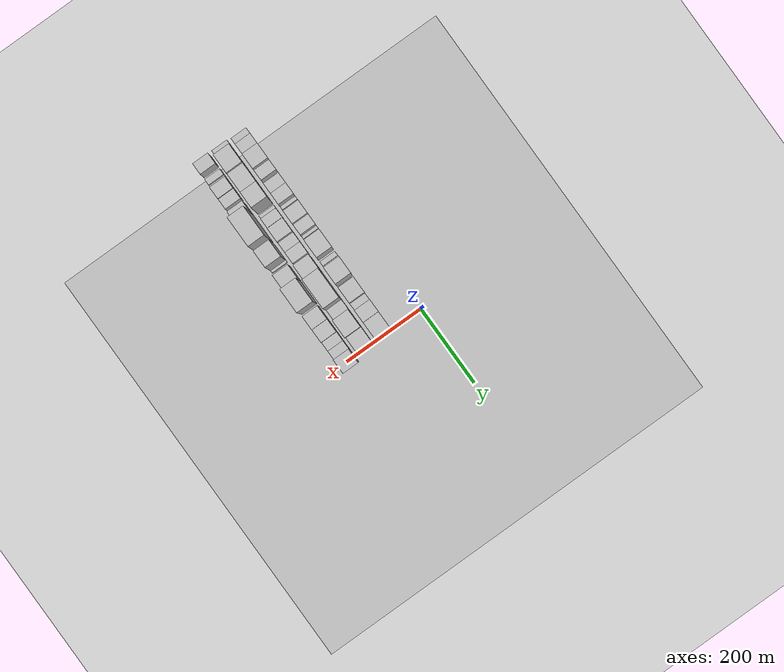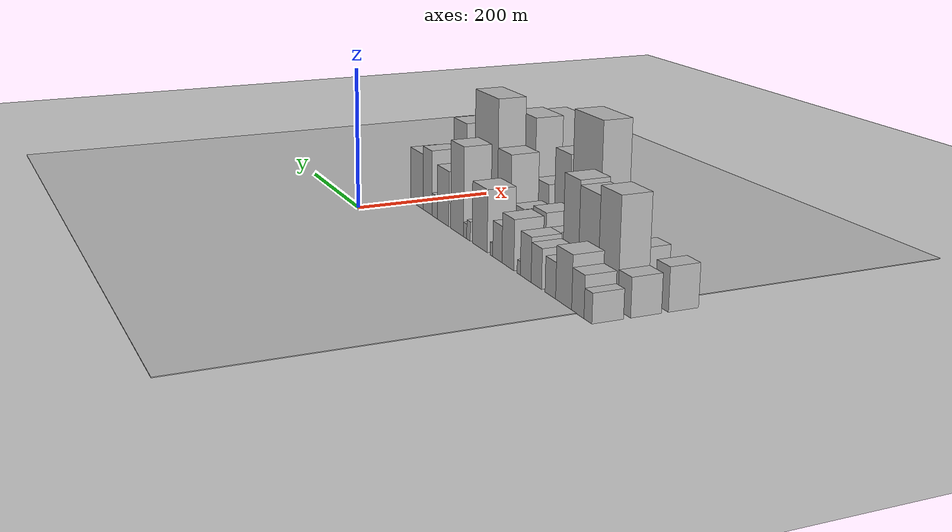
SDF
<sdf version="1.6">
 <world name="default">
  <include><name>ground_plane_1</name><uri>model://HANNAS_ground_plane</uri></include>
  <include>
   <name>ground_plane_2</name>
   <uri>model://HANNAS_ground_plane</uri>
   <pose>100 0 0  0 0 0</pose>
  </include>
  <model name="building_1">
   <static>1</static>
   <pose>100.0000 -526.9370 0 0.000000 0.000000 0.000000</pose>
   <link name="link">
    <pose>0 0 18.00 0 0 0</pose>
    <collision name="collision"><geometry><box><size>40.0000 18.1259 36.0000</size></box></geometry></collision>
    <visual name="visual">
     <cast_shadows>0</cast_shadows>
     <geometry><box><size>40.0000 18.1259 36.0000</size></box></geometry>
     <material>
      <script>
       <uri>model://HANNAS_wall/materials/scripts</uri>
       <uri>model://HANNAS_wall/materials/textures</uri>
       <name>vrc/HANNAS_wall</name>
      </script>
     </material>
    </visual>
   </link>
  </model>
  <model name="building_2">
   <static>1</static>
   <pose>100.0000 -503.3876 0 0.000000 0.000000 0.000000</pose>
   <link name="link">
    <pose>0 0 25.50 0 0 0</pose>
    <collision name="collision"><geometry><box><size>40.0000 28.9729 51.0000</size></box></geometry></collision>
    <visual name="visual">
     <cast_shadows>0</cast_shadows>
     <geometry><box><size>40.0000 28.9729 51.0000</size></box></geometry>
     <material>
      <script>
       <uri>model://HANNAS_wall/materials/scripts</uri>
       <uri>model://HANNAS_wall/materials/textures</uri>
       <name>vrc/HANNAS_wall</name>
      </script>
     </material>
    </visual>
   </link>
  </model>
  <model name="building_3">
   <static>1</static>
   <pose>100.0000 -469.4023 0 0.000000 0.000000 0.000000</pose>
   <link name="link">
    <pose>0 0 33.00 0 0 0</pose>
    <collision name="collision"><geometry><box><size>40.0000 38.9977 66.0000</size></box></geometry></collision>
    <visual name="visual">
     <cast_shadows>0</cast_shadows>
     <geometry><box><size>40.0000 38.9977 66.0000</size></box></geometry>
     <material>
      <script>
       <uri>model://HANNAS_wall/materials/scripts</uri>
       <uri>model://HANNAS_wall/materials/textures</uri>
       <name>vrc/HANNAS_wall</name>
      </script>
     </material>
    </visual>
   </link>
  </model>
  <model name="building_4">
   <static>1</static>
   <pose>100.0000 -436.5735 0 0.000000 0.000000 0.000000</pose>
   <link name="link">
    <pose>0 0 22.50 0 0 0</pose>
    <collision name="collision"><geometry><box><size>40.0000 26.6598 45.0000</size></box></geometry></collision>
    <visual name="visual">
     <cast_shadows>0</cast_shadows>
     <geometry><box><size>40.0000 26.6598 45.0000</size></box></geometry>
     <material>
      <script>
       <uri>model://HANNAS_wall/materials/scripts</uri>
       <uri>model://HANNAS_wall/materials/textures</uri>
       <name>vrc/HANNAS_wall</name>
      </script>
     </material>
    </visual>
   </link>
  </model>
  <model name="building_5">
   <static>1</static>
   <pose>100.0000 -400.4668 0 0.000000 0.000000 0.000000</pose>
   <link name="link">
    <pose>0 0 25.50 0 0 0</pose>
    <collision name="collision"><geometry><box><size>40.0000 27.5535 51.0000</size></box></geometry></collision>
    <visual name="visual">
     <cast_shadows>0</cast_shadows>
     <geometry><box><size>40.0000 27.5535 51.0000</size></box></geometry>
     <material>
      <script>
       <uri>model://HANNAS_wall/materials/scripts</uri>
       <uri>model://HANNAS_wall/materials/textures</uri>
       <name>vrc/HANNAS_wall</name>
      </script>
     </material>
    </visual>
   </link>
  </model>
  <model name="building_6">
   <static>1</static>
   <pose>100.0000 -372.0732 0 0.000000 0.000000 0.000000</pose>
   <link name="link">
    <pose>0 0 28.50 0 0 0</pose>
    <collision name="collision"><geometry><box><size>40.0000 29.2336 57.0000</size></box></geometry></collision>
    <visual name="visual">
     <cast_shadows>0</cast_shadows>
     <geometry><box><size>40.0000 29.2336 57.0000</size></box></geometry>
     <material>
      <script>
       <uri>model://HANNAS_wall/materials/scripts</uri>
       <uri>model://HANNAS_wall/materials/textures</uri>
       <name>vrc/HANNAS_wall</name>
      </script>
     </material>
    </visual>
   </link>
  </model>
  <model name="building_7">
   <static>1</static>
   <pose>100.0000 -353.0779 0 0.000000 0.000000 0.000000</pose>
   <link name="link">
    <pose>0 0 9.00 0 0 0</pose>
    <collision name="collision"><geometry><box><size>40.0000 8.7571 18.0000</size></box></geometry></collision>
    <visual name="visual">
     <cast_shadows>0</cast_shadows>
     <geometry><box><size>40.0000 8.7571 18.0000</size></box></geometry>
     <material>
      <script>
       <uri>model://HANNAS_wall/materials/scripts</uri>
       <uri>model://HANNAS_wall/materials/textures</uri>
       <name>vrc/HANNAS_wall</name>
      </script>
     </material>
    </visual>
   </link>
  </model>
  <model name="building_8">
   <static>1</static>
   <pose>100.0000 -322.6337 0 0.000000 0.000000 0.000000</pose>
   <link name="link">
    <pose>0 0 33.00 0 0 0</pose>
    <collision name="collision"><geometry><box><size>40.0000 34.1313 66.0000</size></box></geometry></collision>
    <visual name="visual">
     <cast_shadows>0</cast_shadows>
     <geometry><box><size>40.0000 34.1313 66.0000</size></box></geometry>
     <material>
      <script>
       <uri>model://HANNAS_wall/materials/scripts</uri>
       <uri>model://HANNAS_wall/materials/textures</uri>
       <name>vrc/HANNAS_wall</name>
      </script>
     </material>
    </visual>
   </link>
  </model>
  <model name="building_9">
   <static>1</static>
   <pose>100.0000 -292.0174 0 0.000000 0.000000 0.000000</pose>
   <link name="link">
    <pose>0 0 24.00 0 0 0</pose>
    <collision name="collision"><geometry><box><size>40.0000 27.1014 48.0000</size></box></geometry></collision>
    <visual name="visual">
     <cast_shadows>0</cast_shadows>
     <geometry><box><size>40.0000 27.1014 48.0000</size></box></geometry>
     <material>
      <script>
       <uri>model://HANNAS_wall/materials/scripts</uri>
       <uri>model://HANNAS_wall/materials/textures</uri>
       <name>vrc/HANNAS_wall</name>
      </script>
     </material>
    </visual>
   </link>
  </model>
  <model name="building_10">
   <static>1</static>
   <pose>100.0000 -274.6580 0 0.000000 0.000000 0.000000</pose>
   <link name="link">
    <pose>0 0 9.00 0 0 0</pose>
    <collision name="collision"><geometry><box><size>40.0000 7.6173 18.0000</size></box></geometry></collision>
    <visual name="visual">
     <cast_shadows>0</cast_shadows>
     <geometry><box><size>40.0000 7.6173 18.0000</size></box></geometry>
     <material>
      <script>
       <uri>model://HANNAS_wall/materials/scripts</uri>
       <uri>model://HANNAS_wall/materials/textures</uri>
       <name>vrc/HANNAS_wall</name>
      </script>
     </material>
    </visual>
   </link>
  </model>
  <model name="building_11">
   <static>1</static>
   <pose>100.0000 -238.5175 0 0.000000 0.000000 0.000000</pose>
   <link name="link">
    <pose>0 0 42.00 0 0 0</pose>
    <collision name="collision"><geometry><box><size>40.0000 46.6637 84.0000</size></box></geometry></collision>
    <visual name="visual">
     <cast_shadows>0</cast_shadows>
     <geometry><box><size>40.0000 46.6637 84.0000</size></box></geometry>
     <material>
      <script>
       <uri>model://HANNAS_wall/materials/scripts</uri>
       <uri>model://HANNAS_wall/materials/textures</uri>
       <name>vrc/HANNAS_wall</name>
      </script>
     </material>
    </visual>
   </link>
  </model>
  <model name="building_12">
   <static>1</static>
   <pose>100.0000 -203.4173 0 0.000000 0.000000 0.000000</pose>
   <link name="link">
    <pose>0 0 13.50 0 0 0</pose>
    <collision name="collision"><geometry><box><size>40.0000 11.5369 27.0000</size></box></geometry></collision>
    <visual name="visual">
     <cast_shadows>0</cast_shadows>
     <geometry><box><size>40.0000 11.5369 27.0000</size></box></geometry>
     <material>
      <script>
       <uri>model://HANNAS_wall/materials/scripts</uri>
       <uri>model://HANNAS_wall/materials/textures</uri>
       <name>vrc/HANNAS_wall</name>
      </script>
     </material>
    </visual>
   </link>
  </model>
  <model name="building_13">
   <static>1</static>
   <pose>100.0000 -192.4836 0 0.000000 0.000000 0.000000</pose>
   <link name="link">
    <pose>0 0 10.50 0 0 0</pose>
    <collision name="collision"><geometry><box><size>40.0000 10.3304 21.0000</size></box></geometry></collision>
    <visual name="visual">
     <cast_shadows>0</cast_shadows>
     <geometry><box><size>40.0000 10.3304 21.0000</size></box></geometry>
     <material>
      <script>
       <uri>model://HANNAS_wall/materials/scripts</uri>
       <uri>model://HANNAS_wall/materials/textures</uri>
       <name>vrc/HANNAS_wall</name>
      </script>
     </material>
    </visual>
   </link>
  </model>
  <model name="building_14">
   <static>1</static>
   <pose>100.0000 -165.8141 0 0.000000 0.000000 0.000000</pose>
   <link name="link">
    <pose>0 0 61.50 0 0 0</pose>
    <collision name="collision"><geometry><box><size>40.0000 43.0087 123.0000</size></box></geometry></collision>
    <visual name="visual">
     <cast_shadows>0</cast_shadows>
     <geometry><box><size>40.0000 43.0087 123.0000</size></box></geometry>
     <material>
      <script>
       <uri>model://HANNAS_wall/materials/scripts</uri>
       <uri>model://HANNAS_wall/materials/textures</uri>
       <name>vrc/HANNAS_wall</name>
      </script>
     </material>
    </visual>
   </link>
  </model>
  <model name="building_15">
   <static>1</static>
   <pose>100.0000 -117.7832 0 0.000000 0.000000 0.000000</pose>
   <link name="link">
    <pose>0 0 39.00 0 0 0</pose>
    <collision name="collision"><geometry><box><size>40.0000 41.0529 78.0000</size></box></geometry></collision>
    <visual name="visual">
     <cast_shadows>0</cast_shadows>
     <geometry><box><size>40.0000 41.0529 78.0000</size></box></geometry>
     <material>
      <script>
       <uri>model://HANNAS_wall/materials/scripts</uri>
       <uri>model://HANNAS_wall/materials/textures</uri>
       <name>vrc/HANNAS_wall</name>
      </script>
     </material>
    </visual>
   </link>
  </model>
  <model name="building_16">
   <static>1</static>
   <pose>100.0000 -87.7702 0 0.000000 0.000000 0.000000</pose>
   <link name="link">
    <pose>0 0 16.50 0 0 0</pose>
    <collision name="collision"><geometry><box><size>40.0000 18.9730 33.0000</size></box></geometry></collision>
    <visual name="visual">
     <cast_shadows>0</cast_shadows>
     <geometry><box><size>40.0000 18.9730 33.0000</size></box></geometry>
     <material>
      <script>
       <uri>model://HANNAS_wall/materials/scripts</uri>
       <uri>model://HANNAS_wall/materials/textures</uri>
       <name>vrc/HANNAS_wall</name>
      </script>
     </material>
    </visual>
   </link>
  </model>
  <model name="building_17">
   <static>1</static>
   <pose>100.0000 -62.4303 0 0.000000 0.000000 0.000000</pose>
   <link name="link">
    <pose>0 0 46.50 0 0 0</pose>
    <collision name="collision"><geometry><box><size>40.0000 31.7069 93.0000</size></box></geometry></collision>
    <visual name="visual">
     <cast_shadows>0</cast_shadows>
     <geometry><box><size>40.0000 31.7069 93.0000</size></box></geometry>
     <material>
      <script>
       <uri>model://HANNAS_wall/materials/scripts</uri>
       <uri>model://HANNAS_wall/materials/textures</uri>
       <name>vrc/HANNAS_wall</name>
      </script>
     </material>
    </visual>
   </link>
  </model>
  <model name="building_18">
   <static>1</static>
   <pose>100.0000 -22.6745 0 0.000000 0.000000 0.000000</pose>
   <link name="link">
    <pose>0 0 40.50 0 0 0</pose>
    <collision name="collision"><geometry><box><size>40.0000 47.8046 81.0000</size></box></geometry></collision>
    <visual name="visual">
     <cast_shadows>0</cast_shadows>
     <geometry><box><size>40.0000 47.8046 81.0000</size></box></geometry>
     <material>
      <script>
       <uri>model://HANNAS_wall/materials/scripts</uri>
       <uri>model://HANNAS_wall/materials/textures</uri>
       <name>vrc/HANNAS_wall</name>
      </script>
     </material>
    </visual>
   </link>
  </model>
  <model name="building_39">
   <static>1</static>
   <pose>149.0000 -521.7345 0 0.000000 0.000000 0.000000</pose>
   <link name="link">
    <pose>0 0 24.00 0 0 0</pose>
    <collision name="collision"><geometry><box><size>40.0000 28.5310 48.0000</size></box></geometry></collision>
    <visual name="visual">
     <cast_shadows>0</cast_shadows>
     <geometry><box><size>40.0000 28.5310 48.0000</size></box></geometry>
     <material>
      <script>
       <uri>model://HANNAS_wall/materials/scripts</uri>
       <uri>model://HANNAS_wall/materials/textures</uri>
       <name>vrc/HANNAS_wall</name>
      </script>
     </material>
    </visual>
   </link>
  </model>
  <model name="building_40">
   <static>1</static>
   <pose>149.0000 -484.3753 0 0.000000 0.000000 0.000000</pose>
   <link name="link">
    <pose>0 0 67.50 0 0 0</pose>
    <collision name="collision"><geometry><box><size>40.0000 46.1875 135.0000</size></box></geometry></collision>
    <visual name="visual">
     <cast_shadows>0</cast_shadows>
     <geometry><box><size>40.0000 46.1875 135.0000</size></box></geometry>
     <material>
      <script>
       <uri>model://HANNAS_wall/materials/scripts</uri>
       <uri>model://HANNAS_wall/materials/textures</uri>
       <name>vrc/HANNAS_wall</name>
      </script>
     </material>
    </visual>
   </link>
  </model>
  <model name="building_41">
   <static>1</static>
   <pose>149.0000 -437.2656 0 0.000000 0.000000 0.000000</pose>
   <link name="link">
    <pose>0 0 61.50 0 0 0</pose>
    <collision name="collision"><geometry><box><size>40.0000 48.0318 123.0000</size></box></geometry></collision>
    <visual name="visual">
     <cast_shadows>0</cast_shadows>
     <geometry><box><size>40.0000 48.0318 123.0000</size></box></geometry>
     <material>
      <script>
       <uri>model://HANNAS_wall/materials/scripts</uri>
       <uri>model://HANNAS_wall/materials/textures</uri>
       <name>vrc/HANNAS_wall</name>
      </script>
     </material>
    </visual>
   </link>
  </model>
  <model name="building_42">
   <static>1</static>
   <pose>149.0000 -393.5932 0 0.000000 0.000000 0.000000</pose>
   <link name="link">
    <pose>0 0 64.50 0 0 0</pose>
    <collision name="collision"><geometry><box><size>40.0000 39.3130 129.0000</size></box></geometry></collision>
    <visual name="visual">
     <cast_shadows>0</cast_shadows>
     <geometry><box><size>40.0000 39.3130 129.0000</size></box></geometry>
     <material>
      <script>
       <uri>model://HANNAS_wall/materials/scripts</uri>
       <uri>model://HANNAS_wall/materials/textures</uri>
       <name>vrc/HANNAS_wall</name>
      </script>
     </material>
    </visual>
   </link>
  </model>
  <model name="building_43">
   <static>1</static>
   <pose>149.0000 -362.1825 0 0.000000 0.000000 0.000000</pose>
   <link name="link">
    <pose>0 0 12.00 0 0 0</pose>
    <collision name="collision"><geometry><box><size>40.0000 11.5084 24.0000</size></box></geometry></collision>
    <visual name="visual">
     <cast_shadows>0</cast_shadows>
     <geometry><box><size>40.0000 11.5084 24.0000</size></box></geometry>
     <material>
      <script>
       <uri>model://HANNAS_wall/materials/scripts</uri>
       <uri>model://HANNAS_wall/materials/textures</uri>
       <name>vrc/HANNAS_wall</name>
      </script>
     </material>
    </visual>
   </link>
  </model>
  <model name="building_44">
   <static>1</static>
   <pose>149.0000 -344.1168 0 0.000000 0.000000 0.000000</pose>
   <link name="link">
    <pose>0 0 24.00 0 0 0</pose>
    <collision name="collision"><geometry><box><size>40.0000 24.6230 48.0000</size></box></geometry></collision>
    <visual name="visual">
     <cast_shadows>0</cast_shadows>
     <geometry><box><size>40.0000 24.6230 48.0000</size></box></geometry>
     <material>
      <script>
       <uri>model://HANNAS_wall/materials/scripts</uri>
       <uri>model://HANNAS_wall/materials/textures</uri>
       <name>vrc/HANNAS_wall</name>
      </script>
     </material>
    </visual>
   </link>
  </model>
  <model name="building_45">
   <static>1</static>
   <pose>149.0000 -310.9780 0 0.000000 0.000000 0.000000</pose>
   <link name="link">
    <pose>0 0 33.00 0 0 0</pose>
    <collision name="collision"><geometry><box><size>40.0000 35.6545 66.0000</size></box></geometry></collision>
    <visual name="visual">
     <cast_shadows>0</cast_shadows>
     <geometry><box><size>40.0000 35.6545 66.0000</size></box></geometry>
     <material>
      <script>
       <uri>model://HANNAS_wall/materials/scripts</uri>
       <uri>model://HANNAS_wall/materials/textures</uri>
       <name>vrc/HANNAS_wall</name>
      </script>
     </material>
    </visual>
   </link>
  </model>
  <model name="building_46">
   <static>1</static>
   <pose>149.0000 -280.0862 0 0.000000 0.000000 0.000000</pose>
   <link name="link">
    <pose>0 0 22.50 0 0 0</pose>
    <collision name="collision"><geometry><box><size>40.0000 26.1290 45.0000</size></box></geometry></collision>
    <visual name="visual">
     <cast_shadows>0</cast_shadows>
     <geometry><box><size>40.0000 26.1290 45.0000</size></box></geometry>
     <material>
      <script>
       <uri>model://HANNAS_wall/materials/scripts</uri>
       <uri>model://HANNAS_wall/materials/textures</uri>
       <name>vrc/HANNAS_wall</name>
      </script>
     </material>
    </visual>
   </link>
  </model>
  <model name="building_47">
   <static>1</static>
   <pose>149.0000 -252.2133 0 0.000000 0.000000 0.000000</pose>
   <link name="link">
    <pose>0 0 27.00 0 0 0</pose>
    <collision name="collision"><geometry><box><size>40.0000 29.6169 54.0000</size></box></geometry></collision>
    <visual name="visual">
     <cast_shadows>0</cast_shadows>
     <geometry><box><size>40.0000 29.6169 54.0000</size></box></geometry>
     <material>
      <script>
       <uri>model://HANNAS_wall/materials/scripts</uri>
       <uri>model://HANNAS_wall/materials/textures</uri>
       <name>vrc/HANNAS_wall</name>
      </script>
     </material>
    </visual>
   </link>
  </model>
  <model name="building_48">
   <static>1</static>
   <pose>149.0000 -208.0061 0 0.000000 0.000000 0.000000</pose>
   <link name="link">
    <pose>0 0 58.50 0 0 0</pose>
    <collision name="collision"><geometry><box><size>40.0000 40.7973 117.0000</size></box></geometry></collision>
    <visual name="visual">
     <cast_shadows>0</cast_shadows>
     <geometry><box><size>40.0000 40.7973 117.0000</size></box></geometry>
     <material>
      <script>
       <uri>model://HANNAS_wall/materials/scripts</uri>
       <uri>model://HANNAS_wall/materials/textures</uri>
       <name>vrc/HANNAS_wall</name>
      </script>
     </material>
    </visual>
   </link>
  </model>
  <model name="building_49">
   <static>1</static>
   <pose>149.0000 -151.1907 0 0.000000 0.000000 0.000000</pose>
   <link name="link">
    <pose>0 0 91.50 0 0 0</pose>
    <collision name="collision"><geometry><box><size>40.0000 72.8335 183.0000</size></box></geometry></collision>
    <visual name="visual">
     <cast_shadows>0</cast_shadows>
     <geometry><box><size>40.0000 72.8335 183.0000</size></box></geometry>
     <material>
      <script>
       <uri>model://HANNAS_wall/materials/scripts</uri>
       <uri>model://HANNAS_wall/materials/textures</uri>
       <name>vrc/HANNAS_wall</name>
      </script>
     </material>
    </visual>
   </link>
  </model>
  <model name="building_50">
   <static>1</static>
   <pose>149.0000 -100.8698 0 0.000000 0.000000 0.000000</pose>
   <link name="link">
    <pose>0 0 25.50 0 0 0</pose>
    <collision name="collision"><geometry><box><size>40.0000 27.8084 51.0000</size></box></geometry></collision>
    <visual name="visual">
     <cast_shadows>0</cast_shadows>
     <geometry><box><size>40.0000 27.8084 51.0000</size></box></geometry>
     <material>
      <script>
       <uri>model://HANNAS_wall/materials/scripts</uri>
       <uri>model://HANNAS_wall/materials/textures</uri>
       <name>vrc/HANNAS_wall</name>
      </script>
     </material>
    </visual>
   </link>
  </model>
  <model name="building_51">
   <static>1</static>
   <pose>149.0000 -64.5780 0 0.000000 0.000000 0.000000</pose>
   <link name="link">
    <pose>0 0 64.50 0 0 0</pose>
    <collision name="collision"><geometry><box><size>40.0000 44.7751 129.0000</size></box></geometry></collision>
    <visual name="visual">
     <cast_shadows>0</cast_shadows>
     <geometry><box><size>40.0000 44.7751 129.0000</size></box></geometry>
     <material>
      <script>
       <uri>model://HANNAS_wall/materials/scripts</uri>
       <uri>model://HANNAS_wall/materials/textures</uri>
       <name>vrc/HANNAS_wall</name>
      </script>
     </material>
    </visual>
   </link>
  </model>
  <model name="building_52">
   <static>1</static>
   <pose>149.0000 -23.9826 0 0.000000 0.000000 0.000000</pose>
   <link name="link">
    <pose>0 0 34.50 0 0 0</pose>
    <collision name="collision"><geometry><box><size>40.0000 36.4156 69.0000</size></box></geometry></collision>
    <visual name="visual">
     <cast_shadows>0</cast_shadows>
     <geometry><box><size>40.0000 36.4156 69.0000</size></box></geometry>
     <material>
      <script>
       <uri>model://HANNAS_wall/materials/scripts</uri>
       <uri>model://HANNAS_wall/materials/textures</uri>
       <name>vrc/HANNAS_wall</name>
      </script>
     </material>
    </visual>
   </link>
  </model>
  <model name="building_69">
   <static>1</static>
   <pose>198.0000 -521.8805 0 0.000000 0.000000 0.000000</pose>
   <link name="link">
    <pose>0 0 27.00 0 0 0</pose>
    <collision name="collision"><geometry><box><size>40.0000 28.2389 54.0000</size></box></geometry></collision>
    <visual name="visual">
     <cast_shadows>0</cast_shadows>
     <geometry><box><size>40.0000 28.2389 54.0000</size></box></geometry>
     <material>
      <script>
       <uri>model://HANNAS_wall/materials/scripts</uri>
       <uri>model://HANNAS_wall/materials/textures</uri>
       <name>vrc/HANNAS_wall</name>
      </script>
     </material>
    </visual>
   </link>
  </model>
  <model name="building_70">
   <static>1</static>
   <pose>198.0000 -491.0880 0 0.000000 0.000000 0.000000</pose>
   <link name="link">
    <pose>0 0 15.00 0 0 0</pose>
    <collision name="collision"><geometry><box><size>40.0000 15.3462 30.0000</size></box></geometry></collision>
    <visual name="visual">
     <cast_shadows>0</cast_shadows>
     <geometry><box><size>40.0000 15.3462 30.0000</size></box></geometry>
     <material>
      <script>
       <uri>model://HANNAS_wall/materials/scripts</uri>
       <uri>model://HANNAS_wall/materials/textures</uri>
       <name>vrc/HANNAS_wall</name>
      </script>
     </material>
    </visual>
   </link>
  </model>
  <model name="building_71">
   <static>1</static>
   <pose>198.0000 -478.3575 0 0.000000 0.000000 0.000000</pose>
   <link name="link">
    <pose>0 0 10.50 0 0 0</pose>
    <collision name="collision"><geometry><box><size>40.0000 10.1148 21.0000</size></box></geometry></collision>
    <visual name="visual">
     <cast_shadows>0</cast_shadows>
     <geometry><box><size>40.0000 10.1148 21.0000</size></box></geometry>
     <material>
      <script>
       <uri>model://HANNAS_wall/materials/scripts</uri>
       <uri>model://HANNAS_wall/materials/textures</uri>
       <name>vrc/HANNAS_wall</name>
      </script>
     </material>
    </visual>
   </link>
  </model>
  <model name="building_72">
   <static>1</static>
   <pose>198.0000 -458.0587 0 0.000000 0.000000 0.000000</pose>
   <link name="link">
    <pose>0 0 28.50 0 0 0</pose>
    <collision name="collision"><geometry><box><size>40.0000 30.4828 57.0000</size></box></geometry></collision>
    <visual name="visual">
     <cast_shadows>0</cast_shadows>
     <geometry><box><size>40.0000 30.4828 57.0000</size></box></geometry>
     <material>
      <script>
       <uri>model://HANNAS_wall/materials/scripts</uri>
       <uri>model://HANNAS_wall/materials/textures</uri>
       <name>vrc/HANNAS_wall</name>
      </script>
     </material>
    </visual>
   </link>
  </model>
  <model name="building_73">
   <static>1</static>
   <pose>198.0000 -429.6857 0 0.000000 0.000000 0.000000</pose>
   <link name="link">
    <pose>0 0 25.50 0 0 0</pose>
    <collision name="collision"><geometry><box><size>40.0000 26.2631 51.0000</size></box></geometry></collision>
    <visual name="visual">
     <cast_shadows>0</cast_shadows>
     <geometry><box><size>40.0000 26.2631 51.0000</size></box></geometry>
     <material>
      <script>
       <uri>model://HANNAS_wall/materials/scripts</uri>
       <uri>model://HANNAS_wall/materials/textures</uri>
       <name>vrc/HANNAS_wall</name>
      </script>
     </material>
    </visual>
   </link>
  </model>
  <model name="building_74">
   <static>1</static>
   <pose>198.0000 -392.7567 0 0.000000 0.000000 0.000000</pose>
   <link name="link">
    <pose>0 0 31.50 0 0 0</pose>
    <collision name="collision"><geometry><box><size>40.0000 31.5948 63.0000</size></box></geometry></collision>
    <visual name="visual">
     <cast_shadows>0</cast_shadows>
     <geometry><box><size>40.0000 31.5948 63.0000</size></box></geometry>
     <material>
      <script>
       <uri>model://HANNAS_wall/materials/scripts</uri>
       <uri>model://HANNAS_wall/materials/textures</uri>
       <name>vrc/HANNAS_wall</name>
      </script>
     </material>
    </visual>
   </link>
  </model>
  <model name="building_75">
   <static>1</static>
   <pose>198.0000 -340.6690 0 0.000000 0.000000 0.000000</pose>
   <link name="link">
    <pose>0 0 94.50 0 0 0</pose>
    <collision name="collision"><geometry><box><size>40.0000 72.5806 189.0000</size></box></geometry></collision>
    <visual name="visual">
     <cast_shadows>0</cast_shadows>
     <geometry><box><size>40.0000 72.5806 189.0000</size></box></geometry>
     <material>
      <script>
       <uri>model://HANNAS_wall/materials/scripts</uri>
       <uri>model://HANNAS_wall/materials/textures</uri>
       <name>vrc/HANNAS_wall</name>
      </script>
     </material>
    </visual>
   </link>
  </model>
  <model name="building_76">
   <static>1</static>
   <pose>198.0000 -278.0977 0 0.000000 0.000000 0.000000</pose>
   <link name="link">
    <pose>0 0 64.50 0 0 0</pose>
    <collision name="collision"><geometry><box><size>40.0000 42.5621 129.0000</size></box></geometry></collision>
    <visual name="visual">
     <cast_shadows>0</cast_shadows>
     <geometry><box><size>40.0000 42.5621 129.0000</size></box></geometry>
     <material>
      <script>
       <uri>model://HANNAS_wall/materials/scripts</uri>
       <uri>model://HANNAS_wall/materials/textures</uri>
       <name>vrc/HANNAS_wall</name>
      </script>
     </material>
    </visual>
   </link>
  </model>
  <model name="building_77">
   <static>1</static>
   <pose>198.0000 -253.7362 0 0.000000 0.000000 0.000000</pose>
   <link name="link">
    <pose>0 0 7.50 0 0 0</pose>
    <collision name="collision"><geometry><box><size>40.0000 6.1609 15.0000</size></box></geometry></collision>
    <visual name="visual">
     <cast_shadows>0</cast_shadows>
     <geometry><box><size>40.0000 6.1609 15.0000</size></box></geometry>
     <material>
      <script>
       <uri>model://HANNAS_wall/materials/scripts</uri>
       <uri>model://HANNAS_wall/materials/textures</uri>
       <name>vrc/HANNAS_wall</name>
      </script>
     </material>
    </visual>
   </link>
  </model>
  <model name="building_78">
   <static>1</static>
   <pose>198.0000 -220.6030 0 0.000000 0.000000 0.000000</pose>
   <link name="link">
    <pose>0 0 37.50 0 0 0</pose>
    <collision name="collision"><geometry><box><size>40.0000 40.1055 75.0000</size></box></geometry></collision>
    <visual name="visual">
     <cast_shadows>0</cast_shadows>
     <geometry><box><size>40.0000 40.1055 75.0000</size></box></geometry>
     <material>
      <script>
       <uri>model://HANNAS_wall/materials/scripts</uri>
       <uri>model://HANNAS_wall/materials/textures</uri>
       <name>vrc/HANNAS_wall</name>
      </script>
     </material>
    </visual>
   </link>
  </model>
  <model name="building_79">
   <static>1</static>
   <pose>198.0000 -170.6135 0 0.000000 0.000000 0.000000</pose>
   <link name="link">
    <pose>0 0 78.00 0 0 0</pose>
    <collision name="collision"><geometry><box><size>40.0000 59.8736 156.0000</size></box></geometry></collision>
    <visual name="visual">
     <cast_shadows>0</cast_shadows>
     <geometry><box><size>40.0000 59.8736 156.0000</size></box></geometry>
     <material>
      <script>
       <uri>model://HANNAS_wall/materials/scripts</uri>
       <uri>model://HANNAS_wall/materials/textures</uri>
       <name>vrc/HANNAS_wall</name>
      </script>
     </material>
    </visual>
   </link>
  </model>
  <model name="building_80">
   <static>1</static>
   <pose>198.0000 -115.9545 0 0.000000 0.000000 0.000000</pose>
   <link name="link">
    <pose>0 0 33.00 0 0 0</pose>
    <collision name="collision"><geometry><box><size>40.0000 35.4445 66.0000</size></box></geometry></collision>
    <visual name="visual">
     <cast_shadows>0</cast_shadows>
     <geometry><box><size>40.0000 35.4445 66.0000</size></box></geometry>
     <material>
      <script>
       <uri>model://HANNAS_wall/materials/scripts</uri>
       <uri>model://HANNAS_wall/materials/textures</uri>
       <name>vrc/HANNAS_wall</name>
      </script>
     </material>
    </visual>
   </link>
  </model>
  <model name="building_81">
   <static>1</static>
   <pose>198.0000 -81.5278 0 0.000000 0.000000 0.000000</pose>
   <link name="link">
    <pose>0 0 30.00 0 0 0</pose>
    <collision name="collision"><geometry><box><size>40.0000 33.4089 60.0000</size></box></geometry></collision>
    <visual name="visual">
     <cast_shadows>0</cast_shadows>
     <geometry><box><size>40.0000 33.4089 60.0000</size></box></geometry>
     <material>
      <script>
       <uri>model://HANNAS_wall/materials/scripts</uri>
       <uri>model://HANNAS_wall/materials/textures</uri>
       <name>vrc/HANNAS_wall</name>
      </script>
     </material>
    </visual>
   </link>
  </model>
  <model name="building_82">
   <static>1</static>
   <pose>198.0000 -53.3703 0 0.000000 0.000000 0.000000</pose>
   <link name="link">
    <pose>0 0 21.00 0 0 0</pose>
    <collision name="collision"><geometry><box><size>40.0000 22.9060 42.0000</size></box></geometry></collision>
    <visual name="visual">
     <cast_shadows>0</cast_shadows>
     <geometry><box><size>40.0000 22.9060 42.0000</size></box></geometry>
     <material>
      <script>
       <uri>model://HANNAS_wall/materials/scripts</uri>
       <uri>model://HANNAS_wall/materials/textures</uri>
       <name>vrc/HANNAS_wall</name>
      </script>
     </material>
    </visual>
   </link>
  </model>
  <model name="building_83">
   <static>1</static>
   <pose>198.0000 -30.9590 0 0.000000 0.000000 0.000000</pose>
   <link name="link">
    <pose>0 0 21.00 0 0 0</pose>
    <collision name="collision"><geometry><box><size>40.0000 21.9167 42.0000</size></box></geometry></collision>
    <visual name="visual">
     <cast_shadows>0</cast_shadows>
     <geometry><box><size>40.0000 21.9167 42.0000</size></box></geometry>
     <material>
      <script>
       <uri>model://HANNAS_wall/materials/scripts</uri>
       <uri>model://HANNAS_wall/materials/textures</uri>
       <name>vrc/HANNAS_wall</name>
      </script>
     </material>
    </visual>
   </link>
  </model>
  <model name="building_84">
   <static>1</static>
   <pose>198.0000 -2.0402 0 0.000000 0.000000 0.000000</pose>
   <link name="link">
    <pose>0 0 34.50 0 0 0</pose>
    <collision name="collision"><geometry><box><size>40.0000 35.9209 69.0000</size></box></geometry></collision>
    <visual name="visual">
     <cast_shadows>0</cast_shadows>
     <geometry><box><size>40.0000 35.9209 69.0000</size></box></geometry>
     <material>
      <script>
       <uri>model://HANNAS_wall/materials/scripts</uri>
       <uri>model://HANNAS_wall/materials/textures</uri>
       <name>vrc/HANNAS_wall</name>
      </script>
     </material>
    </visual>
   </link>
  </model>
 </world>
</sdf>
